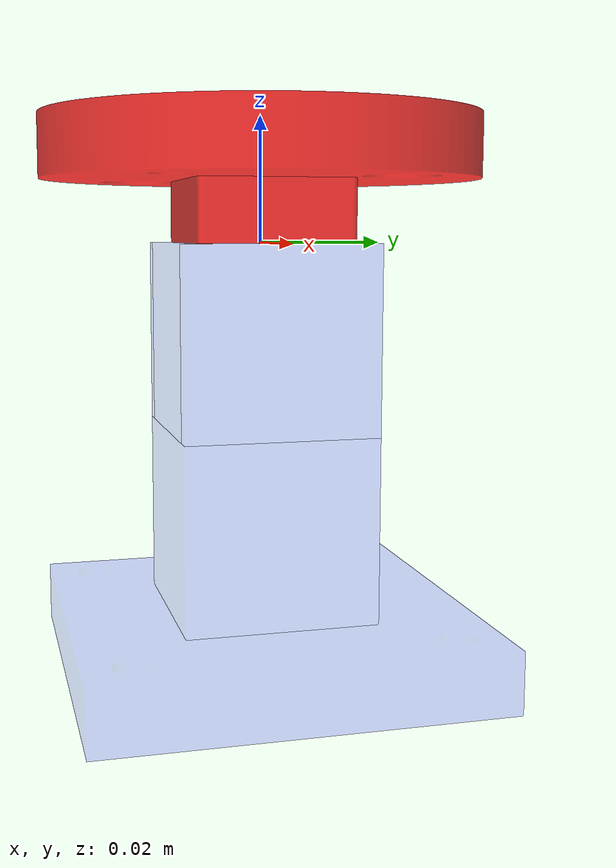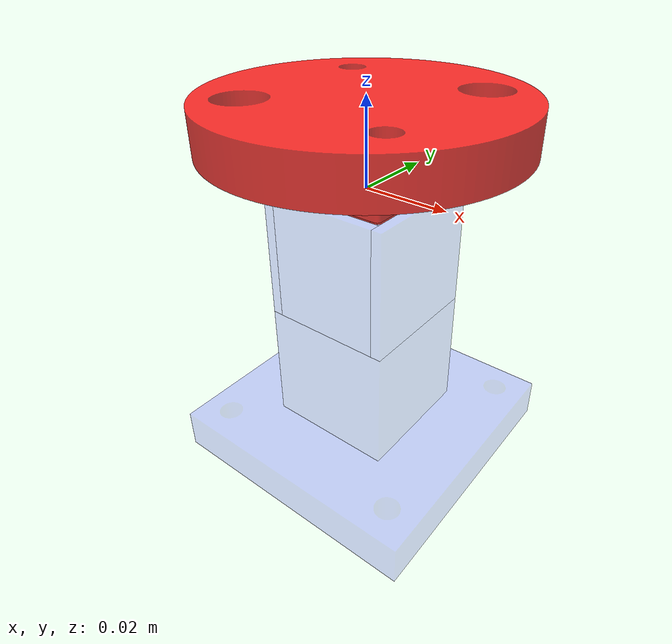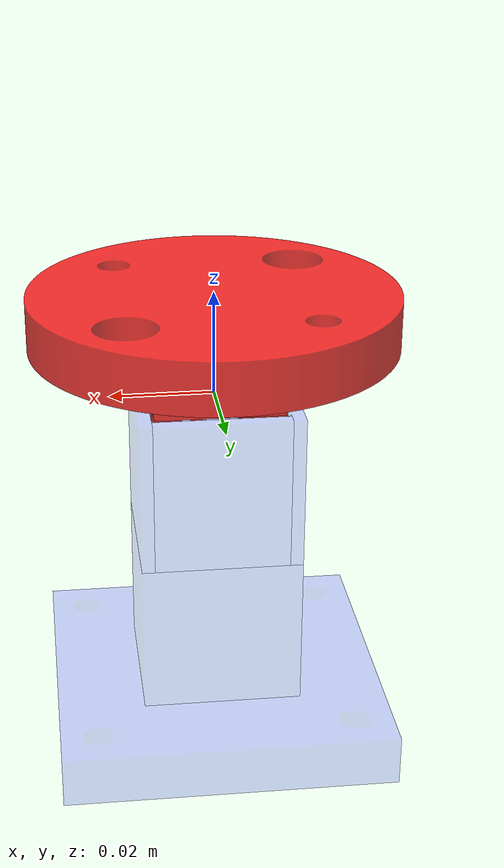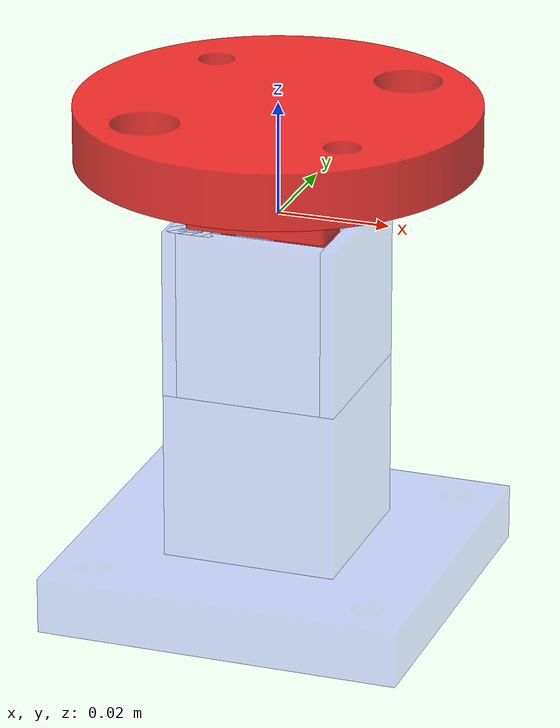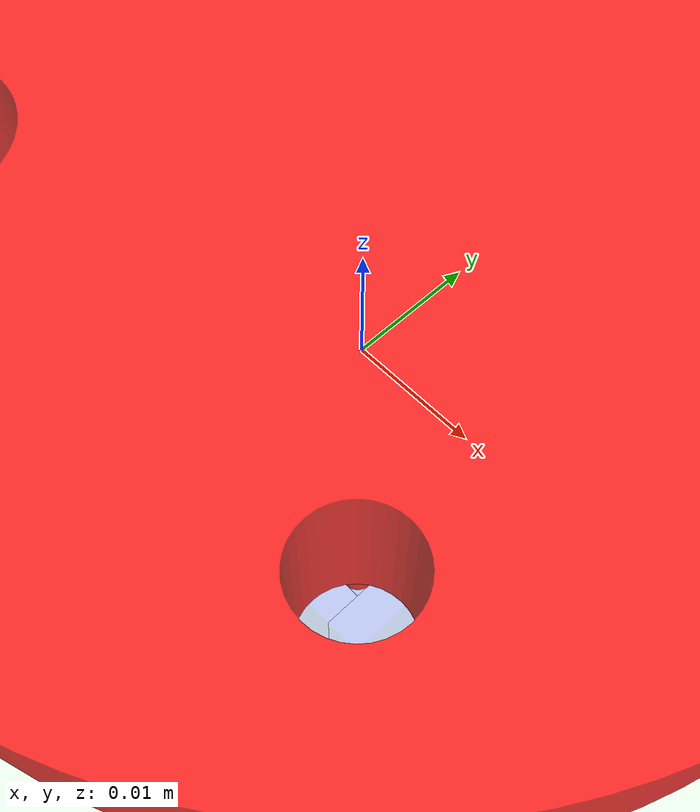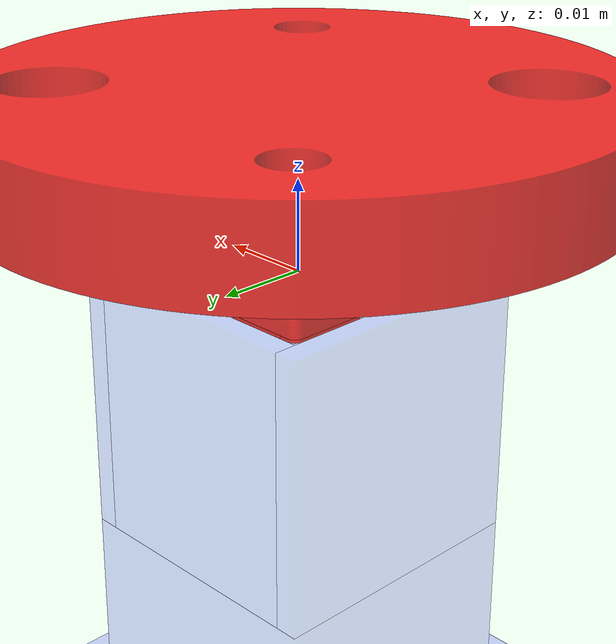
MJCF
<mujoco>
    <option timestep=".001">
        <flag energy="enable" contact="enable" override="enable"/>
    </option>

    <default>
        <default class="hole_geom">
            <geom xyaxes="1 0 0 0 1 0" rgba="0 0 1 0.2"/>
        </default>
        <site size="0.0002" />
        <geom friction="10000" />
    </default>

    <visual>
        <global offwidth="960" offheight="720"/>
    </visual>

    <asset>
        <mesh name="peg1" file="../asset/extrusion/extrusion_peg/decomposition/Body1.stl" />
        <mesh name="peg2" file="../asset/extrusion/extrusion_peg/decomposition/Body2.stl" />
        <mesh name="peg3" file="../asset/extrusion/extrusion_peg/decomposition/Body3.stl" />
        <mesh name="peg4" file="../asset/extrusion/extrusion_peg/decomposition/Body4.stl" />
        <mesh name="peg5" file="../asset/extrusion/extrusion_peg/decomposition/Body5.stl" />
        <mesh name="peg6" file="../asset/extrusion/extrusion_peg/decomposition/Body6.stl" />
        <mesh name="peg7" file="../asset/extrusion/extrusion_peg/decomposition/Body7.stl" />
        <mesh name="peg8" file="../asset/extrusion/extrusion_peg/decomposition/Body8.stl" />
        <mesh name="peg9" file="../asset/extrusion/extrusion_peg/decomposition/Body9.stl" />
        <mesh name="peg10" file="../asset/extrusion/extrusion_peg/decomposition/Body10.stl" />
        <mesh name="peg11" file="../asset/extrusion/extrusion_peg/decomposition/Body11.stl" />
        <mesh name="peg12" file="../asset/extrusion/extrusion_peg/decomposition/Body12.stl" />
        <mesh name="peg13" file="../asset/extrusion/extrusion_peg/decomposition/Body13.stl" />
        <mesh name="peg14" file="../asset/extrusion/extrusion_peg/decomposition/Body14.stl" />
        <mesh name="peg15" file="../asset/extrusion/extrusion_peg/decomposition/Body15.stl" />
        <mesh name="peg16" file="../asset/extrusion/extrusion_peg/decomposition/Body16.stl" />
        <mesh name="peg17" file="../asset/extrusion/extrusion_peg/decomposition/Body17.stl" />
        <mesh name="peg18" file="../asset/extrusion/extrusion_peg/decomposition/Body18.stl" />
        <mesh name="peg19" file="../asset/extrusion/extrusion_peg/decomposition/Body19.stl" />
        <mesh name="peg20" file="../asset/extrusion/extrusion_peg/decomposition/Body20.stl" />
        <mesh name="peg21" file="../asset/extrusion/extrusion_peg/decomposition/Body21.stl" />
        <mesh name="peg22" file="../asset/extrusion/extrusion_peg/decomposition/Body22.stl" />
        <mesh name="peg23" file="../asset/extrusion/extrusion_peg/decomposition/Body23.stl" />
        <mesh name="peg24" file="../asset/extrusion/extrusion_peg/decomposition/Body24.stl" />
        <mesh name="peg25" file="../asset/extrusion/extrusion_peg/decomposition/Body25.stl" />
        <mesh name="peg26" file="../asset/extrusion/extrusion_peg/decomposition/Body26.stl" />
        <mesh name="peg27" file="../asset/extrusion/extrusion_peg/decomposition/Body27.stl" />
        <mesh name="peg28" file="../asset/extrusion/extrusion_peg/decomposition/Body28.stl" />
        <mesh name="peg29" file="../asset/extrusion/extrusion_peg/decomposition/Body29.stl" />
        <mesh name="peg30" file="../asset/extrusion/extrusion_peg/decomposition/Body30.stl" />
        <mesh name="peg31" file="../asset/extrusion/extrusion_peg/decomposition/Body31.stl" />
        <mesh name="peg32" file="../asset/extrusion/extrusion_peg/decomposition/Body32.stl" />
        <mesh name="peg33" file="../asset/extrusion/extrusion_peg/decomposition/Body33.stl" />

        <mesh name="hole1" file="../asset/extrusion/extrusion_hole/decomposition/Body1.stl" />
        <mesh name="hole2" file="../asset/extrusion/extrusion_hole/decomposition/Body2.stl" />
        <mesh name="hole3" file="../asset/extrusion/extrusion_hole/decomposition/Body3.stl" />
        <mesh name="hole4" file="../asset/extrusion/extrusion_hole/decomposition/Body4.stl" />
        <mesh name="hole5" file="../asset/extrusion/extrusion_hole/decomposition/Body5.stl" />
        <mesh name="hole6" file="../asset/extrusion/extrusion_hole/decomposition/Body6.stl" />
        <mesh name="hole7" file="../asset/extrusion/extrusion_hole/decomposition/Body7.stl" />
        <mesh name="hole8" file="../asset/extrusion/extrusion_hole/decomposition/Body8.stl" />
        <mesh name="hole9" file="../asset/extrusion/extrusion_hole/decomposition/Body9.stl" />
        <mesh name="hole10" file="../asset/extrusion/extrusion_hole/decomposition/Body10.stl" />
        <mesh name="hole11" file="../asset/extrusion/extrusion_hole/decomposition/Body11.stl" />
        <mesh name="hole12" file="../asset/extrusion/extrusion_hole/decomposition/Body12.stl" />
        <mesh name="hole13" file="../asset/extrusion/extrusion_hole/decomposition/Body13.stl" />
        <mesh name="hole14" file="../asset/extrusion/extrusion_hole/decomposition/Body14.stl" />
        <mesh name="hole15" file="../asset/extrusion/extrusion_hole/decomposition/Body15.stl" />
        <mesh name="hole16" file="../asset/extrusion/extrusion_hole/decomposition/Body16.stl" />
        <mesh name="hole17" file="../asset/extrusion/extrusion_hole/decomposition/Body17.stl" />
        <mesh name="hole18" file="../asset/extrusion/extrusion_hole/decomposition/Body18.stl" />
        <mesh name="hole19" file="../asset/extrusion/extrusion_hole/decomposition/Body19.stl" />
        <mesh name="hole20" file="../asset/extrusion/extrusion_hole/decomposition/Body20.stl" />
        <mesh name="hole21" file="../asset/extrusion/extrusion_hole/decomposition/Body21.stl" />
        <mesh name="hole22" file="../asset/extrusion/extrusion_hole/decomposition/Body22.stl" />
        <mesh name="hole23" file="../asset/extrusion/extrusion_hole/decomposition/Body23.stl" />
        <mesh name="hole24" file="../asset/extrusion/extrusion_hole/decomposition/Body24.stl" />
        <mesh name="hole25" file="../asset/extrusion/extrusion_hole/decomposition/Body25.stl" />
        <mesh name="hole26" file="../asset/extrusion/extrusion_hole/decomposition/Body26.stl" />
        <mesh name="hole27" file="../asset/extrusion/extrusion_hole/decomposition/Body27.stl" />
        <mesh name="hole28" file="../asset/extrusion/extrusion_hole/decomposition/Body28.stl" />
        <mesh name="hole29" file="../asset/extrusion/extrusion_hole/decomposition/Body29.stl" />
        <mesh name="hole30" file="../asset/extrusion/extrusion_hole/decomposition/Body30.stl" />
        <mesh name="hole31" file="../asset/extrusion/extrusion_hole/decomposition/Body31.stl" />
        <mesh name="hole32" file="../asset/extrusion/extrusion_hole/decomposition/Body32.stl" />
        <mesh name="hole33" file="../asset/extrusion/extrusion_hole/decomposition/Body33.stl" />
        <mesh name="hole34" file="../asset/extrusion/extrusion_hole/decomposition/Body34.stl" />

    </asset>

    <worldbody>
        <site name="world" pos="0 0 0" size="0.0001" />

        <light name="top-light" pos="0.0 0.0 0.5" mode="targetbodycom" target="peg" castshadow="false" ambient=".8 .8 .8" />

        <body name="hole" pos="0 0 0">

            <camera name="track" mode="track" pos="-0.050 -0.050 0.025" euler="60 -45 -30" fovy="69.4"/>

            <inertial pos="0 0 0" mass="0.1" diaginertia="0.1 0.1 0.1" />

            <geom type="mesh" mesh="hole1" xyaxes="1 0 0 0 1 0" rgba="0 0 1 0.2"/>
            <geom type="mesh" mesh="hole2" xyaxes="1 0 0 0 1 0" rgba="0 0 1 0.2"/>
            <geom type="mesh" mesh="hole3" xyaxes="1 0 0 0 1 0" rgba="0 0 1 0.2"/>
            <geom type="mesh" mesh="hole4" xyaxes="1 0 0 0 1 0" rgba="0 0 1 0.2"/>
            <geom type="mesh" mesh="hole5" xyaxes="1 0 0 0 1 0" rgba="0 0 1 0.2"/>
            <geom type="mesh" mesh="hole6" xyaxes="1 0 0 0 1 0" rgba="0 0 1 0.2"/>
            <geom type="mesh" mesh="hole7" xyaxes="1 0 0 0 1 0" rgba="0 0 1 0.2"/>
            <geom type="mesh" mesh="hole8" xyaxes="1 0 0 0 1 0" rgba="0 0 1 0.2"/>
            <geom type="mesh" mesh="hole9" xyaxes="1 0 0 0 1 0" rgba="0 0 1 0.2"/>
            <geom type="mesh" mesh="hole10" xyaxes="1 0 0 0 1 0" rgba="0 0 1 0.2"/>
            <geom type="mesh" mesh="hole11" xyaxes="1 0 0 0 1 0" rgba="0 0 1 0.2"/>
            <geom type="mesh" mesh="hole12" xyaxes="1 0 0 0 1 0" rgba="0 0 1 0.2"/>
            <geom type="mesh" mesh="hole13" xyaxes="1 0 0 0 1 0" rgba="0 0 1 0.2"/>
            <geom type="mesh" mesh="hole14" xyaxes="1 0 0 0 1 0" rgba="0 0 1 0.2"/>
            <geom type="mesh" mesh="hole15" xyaxes="1 0 0 0 1 0" rgba="0 0 1 0.2"/>
            <geom type="mesh" mesh="hole16" xyaxes="1 0 0 0 1 0" rgba="0 0 1 0.2"/>
            <geom type="mesh" mesh="hole17" xyaxes="1 0 0 0 1 0" rgba="0 0 1 0.2"/>
            <geom type="mesh" mesh="hole18" xyaxes="1 0 0 0 1 0" rgba="0 0 1 0.2"/>
            <geom type="mesh" mesh="hole19" xyaxes="1 0 0 0 1 0" rgba="0 0 1 0.2"/>
            <geom type="mesh" mesh="hole20" xyaxes="1 0 0 0 1 0" rgba="0 0 1 0.2"/>
            <geom type="mesh" mesh="hole21" xyaxes="1 0 0 0 1 0" rgba="0 0 1 0.2"/>
            <geom type="mesh" mesh="hole22" xyaxes="1 0 0 0 1 0" rgba="0 0 1 0.2"/>
            <geom type="mesh" mesh="hole23" xyaxes="1 0 0 0 1 0" rgba="0 0 1 0.2"/>
            <geom type="mesh" mesh="hole24" xyaxes="1 0 0 0 1 0" rgba="0 0 1 0.2"/>
            <geom type="mesh" mesh="hole25" xyaxes="1 0 0 0 1 0" rgba="0 0 1 0.2"/>
            <geom type="mesh" mesh="hole26" xyaxes="1 0 0 0 1 0" rgba="0 0 1 0.2"/>
            <geom type="mesh" mesh="hole27" xyaxes="1 0 0 0 1 0" rgba="0 0 1 0.2"/>
            <geom type="mesh" mesh="hole28" xyaxes="1 0 0 0 1 0" rgba="0 0 1 0.2"/>
            <geom type="mesh" mesh="hole29" xyaxes="1 0 0 0 1 0" rgba="0 0 1 0.2"/>
            <geom type="mesh" mesh="hole30" xyaxes="1 0 0 0 1 0" rgba="0 0 1 0.2"/>
            <geom type="mesh" mesh="hole31" xyaxes="1 0 0 0 1 0" rgba="0 0 1 0.2"/>
            <geom type="mesh" mesh="hole32" xyaxes="1 0 0 0 1 0" rgba="0 0 1 0.2"/>
            <geom type="mesh" mesh="hole33" xyaxes="1 0 0 0 1 0" rgba="0 0 1 0.2"/>
            <geom type="mesh" mesh="hole34" xyaxes="1 0 0 0 1 0" rgba="0 0 1 0.2"/>

        </body>

        <body name="peg" pos="0 0 0">
            <inertial pos="0 0 0" mass="1.0" diaginertia="0.1 0.1 0.1" />

            <site name="peg/origin" pos="0 0 0" />
            <site name="peg/sensor" pos="0 0 0" />

            <geom type="mesh" mesh="peg1" xyaxes="1 0 0 0 1 0" rgba="1 0 0 0.8"/>
            <geom type="mesh" mesh="peg2" xyaxes="1 0 0 0 1 0" rgba="1 0 0 0.8"/>
            <geom type="mesh" mesh="peg3" xyaxes="1 0 0 0 1 0" rgba="1 0 0 0.8"/>
            <geom type="mesh" mesh="peg4" xyaxes="1 0 0 0 1 0" rgba="1 0 0 0.8"/>
            <geom type="mesh" mesh="peg5" xyaxes="1 0 0 0 1 0" rgba="1 0 0 0.8"/>
            <geom type="mesh" mesh="peg6" xyaxes="1 0 0 0 1 0" rgba="1 0 0 0.8"/>
            <geom type="mesh" mesh="peg7" xyaxes="1 0 0 0 1 0" rgba="1 0 0 0.8"/>
            <geom type="mesh" mesh="peg8" xyaxes="1 0 0 0 1 0" rgba="1 0 0 0.8"/>
            <geom type="mesh" mesh="peg9" xyaxes="1 0 0 0 1 0" rgba="1 0 0 0.8"/>
            <geom type="mesh" mesh="peg10" xyaxes="1 0 0 0 1 0" rgba="1 0 0 0.8"/>
            <geom type="mesh" mesh="peg11" xyaxes="1 0 0 0 1 0" rgba="1 0 0 0.8"/>
            <geom type="mesh" mesh="peg12" xyaxes="1 0 0 0 1 0" rgba="1 0 0 0.8"/>
            <geom type="mesh" mesh="peg13" xyaxes="1 0 0 0 1 0" rgba="1 0 0 0.8"/>
            <geom type="mesh" mesh="peg14" xyaxes="1 0 0 0 1 0" rgba="1 0 0 0.8"/>
            <geom type="mesh" mesh="peg15" xyaxes="1 0 0 0 1 0" rgba="1 0 0 0.8"/>
            <geom type="mesh" mesh="peg16" xyaxes="1 0 0 0 1 0" rgba="1 0 0 0.8"/>
            <geom type="mesh" mesh="peg17" xyaxes="1 0 0 0 1 0" rgba="1 0 0 0.8"/>
            <geom type="mesh" mesh="peg18" xyaxes="1 0 0 0 1 0" rgba="1 0 0 0.8"/>
            <geom type="mesh" mesh="peg19" xyaxes="1 0 0 0 1 0" rgba="1 0 0 0.8"/>
            <geom type="mesh" mesh="peg20" xyaxes="1 0 0 0 1 0" rgba="1 0 0 0.8"/>
            <geom type="mesh" mesh="peg21" xyaxes="1 0 0 0 1 0" rgba="1 0 0 0.8"/>
            <geom type="mesh" mesh="peg22" xyaxes="1 0 0 0 1 0" rgba="1 0 0 0.8"/>
            <geom type="mesh" mesh="peg23" xyaxes="1 0 0 0 1 0" rgba="1 0 0 0.8"/>
            <geom type="mesh" mesh="peg24" xyaxes="1 0 0 0 1 0" rgba="1 0 0 0.8"/>
            <geom type="mesh" mesh="peg25" xyaxes="1 0 0 0 1 0" rgba="1 0 0 0.8"/>
            <geom type="mesh" mesh="peg26" xyaxes="1 0 0 0 1 0" rgba="1 0 0 0.8"/>
            <geom type="mesh" mesh="peg27" xyaxes="1 0 0 0 1 0" rgba="1 0 0 0.8"/>
            <geom type="mesh" mesh="peg28" xyaxes="1 0 0 0 1 0" rgba="1 0 0 0.8"/>
            <geom type="mesh" mesh="peg29" xyaxes="1 0 0 0 1 0" rgba="1 0 0 0.8"/>
            <geom type="mesh" mesh="peg30" xyaxes="1 0 0 0 1 0" rgba="1 0 0 0.8"/>
            <geom type="mesh" mesh="peg31" xyaxes="1 0 0 0 1 0" rgba="1 0 0 0.8"/>
            <geom type="mesh" mesh="peg32" xyaxes="1 0 0 0 1 0" rgba="1 0 0 0.8"/>
            <geom type="mesh" mesh="peg33" xyaxes="1 0 0 0 1 0" rgba="1 0 0 0.8"/>

            <joint name="trans_x" type="slide" axis="1 0 0" limited="false"/>
            <joint name="trans_y" type="slide" axis="0 1 0" limited="false"/>
            <joint name="trans_z" type="slide" axis="0 0 1" limited="false"/>
            <joint name="hinge_x" type="hinge" axis="1 0 0" limited="false"/>
            <joint name="hinge_y" type="hinge" axis="0 1 0" limited="false"/>
            <joint name="hinge_z" type="hinge" axis="0 0 1" limited="false"/>
        </body>

    </worldbody>

    <actuator>
        <position name="x" forcelimited="true" forcerange="-20 20" joint="trans_x" kp="100000" kv="100" />
        <position name="y" forcelimited="true" forcerange="-20 20" joint="trans_y" kp="100000" kv="100" />
        <position name="z" forcelimited="true" forcerange="-20 20" joint="trans_z" kp="100000" kv="100" />
        <position name="rx" forcelimited="true" forcerange="-5 5" joint="hinge_x" kp="50" kv="5" />
        <position name="ry" forcelimited="true" forcerange="-5 5" joint="hinge_y" kp="50" kv="5"/>
        <position name="rz" forcelimited="true" forcerange="-5 5" joint="hinge_z" kp="50" kv="5"/>
    </actuator>

    <sensor>
        <force name="force_sensor" site="peg/sensor" />
        <torque name="torque_sensor" site="peg/sensor" />
        <framepos name="peg_pos" objtype="site" objname="peg/origin"/>
        <framequat name="peg_quat" objtype="site" objname="peg/origin"/>
    </sensor>
</mujoco>
